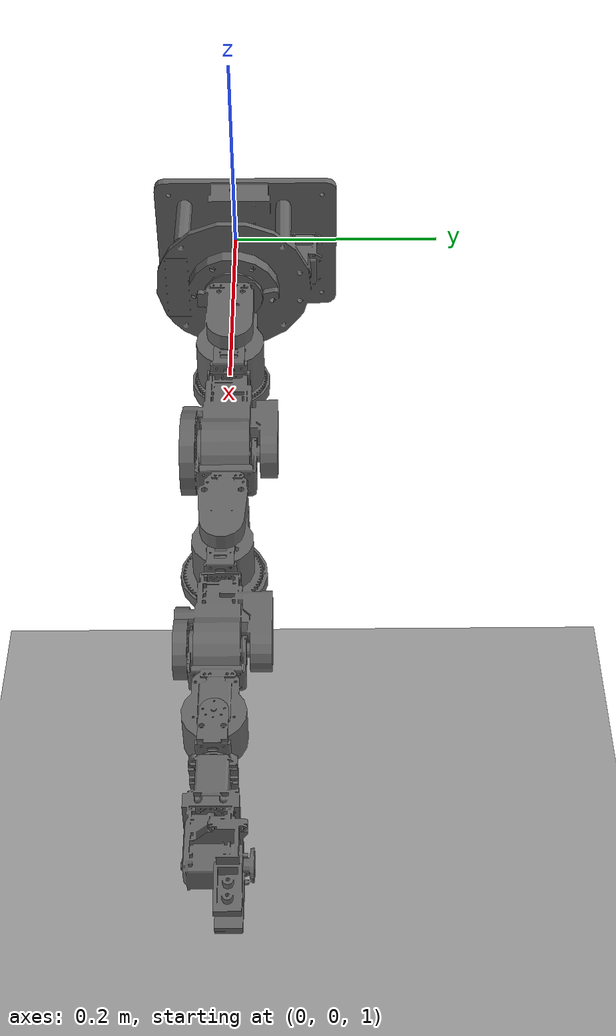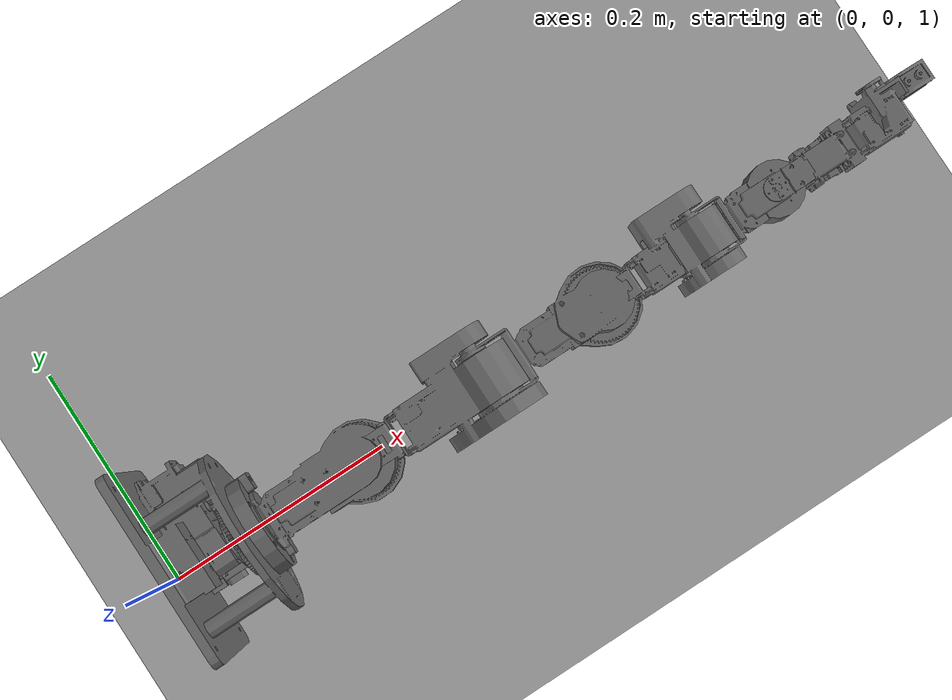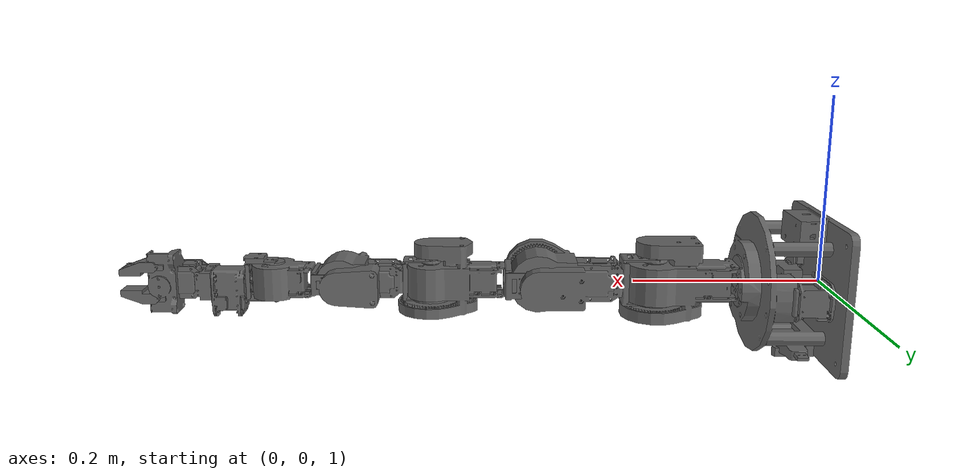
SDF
<?xml version="1.0"?>
<sdf version="1.4">
  <world name="default">
    <!-- Ground Plane -->
    <include>
      <uri>model://ground_plane_with_visual_plugin</uri>
    </include>
    <!-- Light Source -->
    <light type="directional" name="sun">
      <cast_shadows>true</cast_shadows>
      <pose>0 0 5 0 0 0</pose>
      <diffuse>0.8 0.8 0.8 1</diffuse>
      <specular>0.2 0.2 0.2 1</specular>
      <attenuation>
        <range>1000</range>
        <constant>0.9</constant>
        <linear>0.01</linear>
        <quadratic>0.001</quadratic>
      </attenuation>
      <direction>1 1 -1</direction>
    </light>
    <!-- Ground Plane -->
    <include>
      <pose>0 0 1 0 1.57 0</pose>
      <!-- 0.14 obtained from the sdf file of wam-->
      <uri>model://cyton_gamma_1500_description</uri>
    </include>
    <plugin name="gazebo_rosmatlab_bridge" filename="libgazebo_rosmatlab_bridge.so">
      <joints>shoulder_roll_joint;shoulder_pitch_joint;shoulder_yaw_joint;elbow_pitch_joint;elbow_yaw_joint;wrist_pitch_joint;wrist_roll_joint;gripper_joint;gripper_joint2</joints>
      <links>wrist_roll</links>
    </plugin>
  </world>
</sdf>

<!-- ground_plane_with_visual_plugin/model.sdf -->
<sdf version="1.4">
  <model name="ground_plane_with_visual_plugin">
    <static>true</static>
    <link name="link">
      <collision name="collision">
        <geometry>
          <plane>
            <normal>0 0 1</normal>
            <size>100 100</size>
          </plane>
        </geometry>
        <surface>
          <friction>
            <ode>
              <mu>100</mu>
              <mu2>50</mu2>
            </ode>
          </friction>
        </surface>
      </collision>
      <visual name="visual">
        <cast_shadows>false</cast_shadows>
        <plugin name="trajectory_visualizer" filename="libtrajectory_visualizer.so"/>
        <geometry>
          <plane>
            <normal>0 0 1</normal>
            <size>100 100</size>
          </plane>
        </geometry>
        <material>
          <script>
            <uri>file://media/materials/scripts/gazebo.material</uri>
            <name>Gazebo/Grey</name>
          </script>
        </material>
      </visual>
    </link>
  </model>
</sdf>

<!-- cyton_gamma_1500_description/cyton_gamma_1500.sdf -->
<sdf version='1.5'>
  <model name='cyton_gamma_1500'>
    <link name='base_footprint'>
      <pose>0 0 0 0 -0 0</pose>
      <inertial>
        <pose>0 0.0115 0.047 0 -0 0</pose>
        <mass>0.24</mass>
        <inertia>
          <ixx>0.0008033</ixx>
          <ixy>0</ixy>
          <ixz>0</ixz>
          <iyy>0.00065104</iyy>
          <iyz>2.71051e-20</iyz>
          <izz>0.0011009</izz>
        </inertia>
      </inertial>
      <collision name='base_footprint_collision_base_link'>
        <pose>0 0.0115 0.047 0 -0 0</pose>
        <geometry>
          <box>
            <size>0.154 0.177 0.094</size>
          </box>
        </geometry>
      </collision>
      <visual name='base_footprint_visual'>
        <pose>0 0 0 0 -0 0</pose>
        <geometry>
          <sphere>
            <radius>0.001</radius>
          </sphere>
        </geometry>
      </visual>
      <visual name='base_footprint_visual_base_link'>
        <pose>0 0 0 0 -0 0</pose>
        <geometry>
          <mesh>
            <scale>1 1 1</scale>
            <uri>model://cyton_gamma_1500_description/meshes/base.dae</uri>
          </mesh>
        </geometry>
      </visual>
      <velocity_decay>
        <linear>0</linear>
        <angular>0</angular>
      </velocity_decay>
    </link>
    <joint name="base_footprint_fix" type="revolute">
      <child>base_footprint</child>
      <parent>world</parent>
      <axis>
        <limit>
          <lower>0.000000</lower>
          <upper>0.000000</upper>
        </limit>
        <dynamics>
          <damping>0.000000</damping>
        </dynamics>
        <xyz>0.000000 0.000000 1.000000</xyz>
      </axis>
    </joint>
    <link name='shoulder_roll'>
      <pose>0 0 0.05315 0 -0 0</pose>
      <inertial>
        <pose>0 0 0.0907 0 -0 0</pose>
        <mass>0.24</mass>
        <inertia>
          <ixx>0.000799188</ixx>
          <ixy>0</ixy>
          <ixz>0</ixz>
          <iyy>0.000851555</iyy>
          <iyz>0</iyz>
          <izz>0.00033407</izz>
        </inertia>
      </inertial>
      <collision name='shoulder_roll_collision'>
        <pose>0 0 0.0907 0 -0 0</pose>
        <geometry>
          <box>
            <size>0.09829 0.08392 0.18143</size>
          </box>
        </geometry>
      </collision>
      <visual name='shoulder_roll_visual'>
        <pose>0 0 0 1.5708 -2.77556e-17 0.384</pose>
        <geometry>
          <mesh>
            <scale>1 1 1</scale>
            <uri>model://cyton_gamma_1500_description/meshes/shoulder_roll.dae</uri>
          </mesh>
        </geometry>
      </visual>
      <velocity_decay>
        <linear>0</linear>
        <angular>0</angular>
      </velocity_decay>
    </link>
    <joint name='shoulder_roll_joint' type='revolute'>
      <child>shoulder_roll</child>
      <parent>base_footprint</parent>
      <axis>
        <xyz>0 0 1</xyz>
        <limit>
          <lower>-2.618</lower>
          <upper>2.618</upper>
          <effort>1000</effort>
          <velocity>1</velocity>
        </limit>
        <dynamics>
          <damping>0.200000</damping>
          <spring_reference>0</spring_reference>
          <spring_stiffness>0</spring_stiffness>
        </dynamics>
        <use_parent_model_frame>1</use_parent_model_frame>
      </axis>
    </joint>
    <link name='shoulder_pitch'>
      <pose>0.0205 0 0.1775 0 -0 0</pose>
      <inertial>
        <pose>-0.02 0 0.06 0 -0 0</pose>
        <mass>0.24</mass>
        <inertia>
          <ixx>0.0010265</ixx>
          <ixy>0</ixy>
          <ixz>0</ixz>
          <iyy>0.00101</iyy>
          <iyz>0</iyz>
          <izz>0.0002725</izz>
        </inertia>
      </inertial>
      <collision name='shoulder_pitch_collision'>
        <pose>-0.02 0 0.06 0 -0 0</pose>
        <geometry>
          <box>
            <size>0.08 0.085 0.21</size>
          </box>
        </geometry>
      </collision>
      <visual name='shoulder_pitch_visual'>
        <pose>0 0 0 1.5708 -0 0</pose>
        <geometry>
          <mesh>
            <scale>1 1 1</scale>
            <uri>model://cyton_gamma_1500_description/meshes/shoulder_pitch.dae</uri>
          </mesh>
        </geometry>
      </visual>
      <velocity_decay>
        <linear>0</linear>
        <angular>0</angular>
      </velocity_decay>
    </link>
    <joint name='shoulder_pitch_joint' type='revolute'>
      <child>shoulder_pitch</child>
      <parent>shoulder_roll</parent>
      <axis>
        <xyz>1 0 0</xyz>
        <limit>
          <lower>-1.8326</lower>
          <upper>1.8326</upper>
          <effort>1000</effort>
          <velocity>1</velocity>
        </limit>
        <dynamics>
          <damping>0.100000</damping>
          <spring_reference>0</spring_reference>
          <spring_stiffness>0</spring_stiffness>
        </dynamics>
        <use_parent_model_frame>1</use_parent_model_frame>
      </axis>
    </joint>
    <link name='shoulder_yaw'>
      <pose>-0.001 -0.0205 0.303 0 -0 0</pose>
      <inertial>
        <pose>0 0.025 0.0623 0 -0 0</pose>
        <mass>0.14</mass>
        <inertia>
          <ixx>0.000464246</ixx>
          <ixy>0</ixy>
          <ixz>0</ixz>
          <iyy>0.000457544</iyy>
          <iyz>0</iyz>
          <izz>0.000126656</izz>
        </inertia>
      </inertial>
      <collision name='shoulder_yaw_collision'>
        <pose>0 0.025 0.0623 0 -0 0</pose>
        <geometry>
          <box>
            <size>0.0717 0.0756 0.1846</size>
          </box>
        </geometry>
      </collision>
      <visual name='shoulder_yaw_visual'>
        <pose>0 0 0 1.5708 5.55112e-17 -1.5708</pose>
        <geometry>
          <mesh>
            <scale>1 1 1</scale>
            <uri>model://cyton_gamma_1500_description/meshes/shoulder_yaw.dae</uri>
          </mesh>
        </geometry>
      </visual>
      <velocity_decay>
        <linear>0</linear>
        <angular>0</angular>
      </velocity_decay>
    </link>
    <joint name='shoulder_yaw_joint' type='revolute'>
      <child>shoulder_yaw</child>
      <parent>shoulder_pitch</parent>
      <axis>
        <xyz>0 -1 0</xyz>
        <limit>
          <lower>-1.8326</lower>
          <upper>1.8326</upper>
          <effort>1000</effort>
          <velocity>1</velocity>
        </limit>
        <dynamics>
          <damping>0.100000</damping>
          <spring_reference>0</spring_reference>
          <spring_stiffness>0</spring_stiffness>
        </dynamics>
        <use_parent_model_frame>1</use_parent_model_frame>
      </axis>
    </joint>
    <link name='elbow_pitch'>
      <pose>0.017 0.0001 0.4188 0 -0 0</pose>
      <inertial>
        <pose>-0.025 0 0.07785 0 -0 0</pose>
        <mass>0.14</mass>
        <inertia>
          <ixx>0.000350216</ixx>
          <ixy>0</ixy>
          <ixz>0</ixz>
          <iyy>0.000317993</iyy>
          <iyz>0</iyz>
          <izz>0.00010255</izz>
        </inertia>
      </inertial>
      <collision name='elbow_pitch_collision'>
        <pose>-0.025 0 0.07785 0 -0 0</pose>
        <geometry>
          <box>
            <size>0.0549 0.076 0.1557</size>
          </box>
        </geometry>
      </collision>
      <visual name='elbow_pitch_visual'>
        <pose>0 0 0 1.5708 -2.11758e-22 -3.14159</pose>
        <geometry>
          <mesh>
            <scale>1 1 1</scale>
            <uri>model://cyton_gamma_1500_description/meshes/elbow_pitch.dae</uri>
          </mesh>
        </geometry>
      </visual>
      <velocity_decay>
        <linear>0</linear>
        <angular>0</angular>
      </velocity_decay>
    </link>
    <joint name='elbow_pitch_joint' type='revolute'>
      <child>elbow_pitch</child>
      <parent>shoulder_yaw</parent>
      <axis>
        <xyz>1 0 0</xyz>
        <limit>
          <lower>-1.8326</lower>
          <upper>1.8326</upper>
          <effort>1000</effort>
          <velocity>1</velocity>
        </limit>
        <dynamics>
          <spring_reference>0</spring_reference>
          <spring_stiffness>0</spring_stiffness>
          <damping>0.100000</damping>
        </dynamics>
        <use_parent_model_frame>1</use_parent_model_frame>
      </axis>
    </joint>
    <link name='elbow_yaw'>
      <pose>-0.0001 -0.0179 0.51626 0 -0 0</pose>
      <inertial>
        <pose>0 0.02 0.058 0 -0 0</pose>
        <mass>0.14</mass>
        <inertia>
          <ixx>0.00017584</ixx>
          <ixy>0</ixy>
          <ixz>0</ixz>
          <iyy>0.00019038</iyy>
          <iyz>0</iyz>
          <izz>5.22467e-05</izz>
        </inertia>
      </inertial>
      <collision name='elbow_yaw_collision'>
        <pose>0 0.02 0.058 0 -0 0</pose>
        <geometry>
          <box>
            <size>0.0535 0.0402 0.116</size>
          </box>
        </geometry>
      </collision>
      <visual name='elbow_yaw_visual'>
        <pose>0 0 0 1.5708 -5.55112e-17 1.5708</pose>
        <geometry>
          <mesh>
            <scale>1 1 1</scale>
            <uri>model://cyton_gamma_1500_description/meshes/elbow_yaw.dae</uri>
          </mesh>
        </geometry>
      </visual>
      <velocity_decay>
        <linear>0</linear>
        <angular>0</angular>
      </velocity_decay>
    </link>
    <joint name='elbow_yaw_joint' type='revolute'>
      <child>elbow_yaw</child>
      <parent>elbow_pitch</parent>
      <axis>
        <xyz>0 -1 0</xyz>
        <limit>
          <lower>-1.8326</lower>
          <upper>1.8326</upper>
          <effort>1000</effort>
          <velocity>1</velocity>
        </limit>
        <dynamics>
          <spring_reference>0</spring_reference>
          <spring_stiffness>0</spring_stiffness>
          <damping>0.100000</damping>
        </dynamics>
        <use_parent_model_frame>1</use_parent_model_frame>
      </axis>
    </joint>
    <link name='wrist_pitch'>
      <pose>0.02616 0.0001 0.58806 0 -0 0</pose>
      <inertial>
        <pose>-0.025925 0.013 0.01 0 -0 0</pose>
        <mass>0.14</mass>
        <inertia>
          <ixx>2.99629e-05</ixx>
          <ixy>0</ixy>
          <ixz>0</ixz>
          <iyy>5.34412e-05</iyy>
          <iyz>0</iyz>
          <izz>3.92516e-05</izz>
        </inertia>
      </inertial>
      <collision name='wrist_pitch_collision'>
        <pose>-0.025925 0.013 0.01 0 -0 0</pose>
        <geometry>
          <box>
            <size>0.05185 0.026 0.0435</size>
          </box>
        </geometry>
      </collision>
      <visual name='wrist_pitch_visual'>
        <pose>0 0 0 1.5708 -5.55112e-17 1.5708</pose>
        <geometry>
          <mesh>
            <scale>1 1 1</scale>
            <uri>model://cyton_gamma_1500_description/meshes/wrist_pitch.dae</uri>
          </mesh>
        </geometry>
      </visual>
      <velocity_decay>
        <linear>0</linear>
        <angular>0</angular>
      </velocity_decay>
    </link>
    <joint name='wrist_pitch_joint' type='revolute'>
      <child>wrist_pitch</child>
      <parent>elbow_yaw</parent>
      <axis>
        <xyz>-1 0 0</xyz>
        <limit>
          <lower>-1.8326</lower>
          <upper>1.8326</upper>
          <effort>1000</effort>
          <velocity>1</velocity>
        </limit>
        <dynamics>
          <spring_reference>0</spring_reference>
          <spring_stiffness>0</spring_stiffness>
          <damping>0.100000</damping>
        </dynamics>
        <use_parent_model_frame>1</use_parent_model_frame>
      </axis>
    </joint>
    <link name='wrist_roll'>
      <pose>-9.5e-05 0.0001 0.639485 0 -0 0</pose>
      <inertial>
        <pose>-1.65417e-07 -0.00139934 0.0300035 0 -0 0</pose>
        <mass>0.14001</mass>
        <inertia>
          <ixx>0.000187197</ixx>
          <ixy>2.15373e-10</ixy>
          <ixz>1.1446e-09</ixz>
          <iyy>0.000157516</iyy>
          <iyz>-4.5962e-09</iyz>
          <izz>9.22904e-05</izz>
        </inertia>
      </inertial>
      <collision name='wrist_roll_collision'>
        <pose>0 -0.0014 0.03 0 -0 0</pose>
        <geometry>
          <box>
            <size>0.0518 0.0723 0.104</size>
          </box>
        </geometry>
      </collision>
      <visual name='wrist_roll_visual'>
        <pose>0 0 0 -3.14159 2.11758e-22 -1.5708</pose>
        <geometry>
          <mesh>
            <scale>1 1 1</scale>
            <uri>model://cyton_gamma_1500_description/meshes/wrist_roll.dae</uri>
          </mesh>
        </geometry>
      </visual>
      <visual name='wrist_roll_visual_virtual_endeffector'>
        <pose>-0.002316 0.0079 0.079425 0 -0 0</pose>
        <geometry>
          <sphere>
            <radius>0.002</radius>
          </sphere>
        </geometry>
      </visual>
      <velocity_decay>
        <linear>0</linear>
        <angular>0</angular>
      </velocity_decay>
    </link>
    <joint name='wrist_roll_joint' type='revolute'>
      <child>wrist_roll</child>
      <parent>wrist_pitch</parent>
      <axis>
        <xyz>0 0 1</xyz>
        <limit>
          <lower>-2.61799</lower>
          <upper>2.61799</upper>
          <effort>1000</effort>
          <velocity>1</velocity>
        </limit>
        <dynamics>
          <spring_reference>0</spring_reference>
          <spring_stiffness>0</spring_stiffness>
          <damping>0.100000</damping>
        </dynamics>
        <use_parent_model_frame>1</use_parent_model_frame>
      </axis>
    </joint>
    <link name='gripper_finger1'>
      <pose>-0.013405 0.00495 0.71671 0 -0 0</pose>
      <inertial>
        <pose>-0.005 0.0172 0.02 0 -0 0</pose>
        <mass>0.05</mass>
        <inertia>
          <ixx>1.15861e-05</ixx>
          <ixy>0</ixy>
          <ixz>0</ixz>
          <iyy>1.03385e-05</iyy>
          <iyz>0</iyz>
          <izz>3.12254e-06</izz>
        </inertia>
      </inertial>
      <collision name='gripper_finger1_collision'>
        <pose>-0.005 0.0172 0.02 0 -0 0</pose>
        <geometry>
          <box>
            <size>0.015 0.0229 0.0475</size>
          </box>
        </geometry>
      </collision>
      <visual name='gripper_finger1_visual'>
        <pose>0 0 0 0 -0 0</pose>
        <geometry>
          <mesh>
            <scale>1 1 1</scale>
            <uri>model://cyton_gamma_1500_description/meshes/gripper_finger1.dae</uri>
          </mesh>
        </geometry>
      </visual>
      <velocity_decay>
        <linear>0</linear>
        <angular>0</angular>
      </velocity_decay>
    </link>
    <joint name='gripper_joint' type='prismatic'>
      <child>gripper_finger1</child>
      <parent>wrist_roll</parent>
      <axis>
        <xyz>1 0 0</xyz>
        <limit>
          <lower>-0.008</lower>
          <upper>0.008</upper>
          <effort>1000</effort>
          <velocity>1</velocity>
        </limit>
        <dynamics>
          <spring_reference>0</spring_reference>
          <spring_stiffness>0</spring_stiffness>
          <damping>0.100000</damping>
        </dynamics>
        <use_parent_model_frame>1</use_parent_model_frame>
      </axis>
    </joint>
    <link name='gripper_finger2'>
      <pose>0.009705 0.00495 0.71671 0 -0 0</pose>
      <inertial>
        <pose>0.005 0.0172 0.02 0 -0 0</pose>
        <mass>0.05</mass>
        <inertia>
          <ixx>1.15861e-05</ixx>
          <ixy>0</ixy>
          <ixz>0</ixz>
          <iyy>1.03385e-05</iyy>
          <iyz>0</iyz>
          <izz>3.12254e-06</izz>
        </inertia>
      </inertial>
      <collision name='gripper_finger2_collision'>
        <pose>0.005 0.0172 0.02 0 -0 0</pose>
        <geometry>
          <box>
            <size>0.015 0.0229 0.0475</size>
          </box>
        </geometry>
      </collision>
      <visual name='gripper_finger2_visual'>
        <pose>0 0 0 0 -0 0</pose>
        <geometry>
          <mesh>
            <scale>1 1 1</scale>
            <uri>model://cyton_gamma_1500_description/meshes/gripper_finger2.dae</uri>
          </mesh>
        </geometry>
      </visual>
      <velocity_decay>
        <linear>0</linear>
        <angular>0</angular>
      </velocity_decay>
    </link>
    <joint name='gripper_joint2' type='prismatic'>
      <child>gripper_finger2</child>
      <parent>wrist_roll</parent>
      <axis>
        <xyz>1 0 0</xyz>
        <limit>
          <lower>-0.008</lower>
          <upper>0.008</upper>
          <effort>1000</effort>
          <velocity>1</velocity>
        </limit>
        <dynamics>
          <spring_reference>0</spring_reference>
          <spring_stiffness>0</spring_stiffness>
          <damping>0.100000</damping>
        </dynamics>
        <use_parent_model_frame>1</use_parent_model_frame>
      </axis>
    </joint>
  </model>
</sdf>
